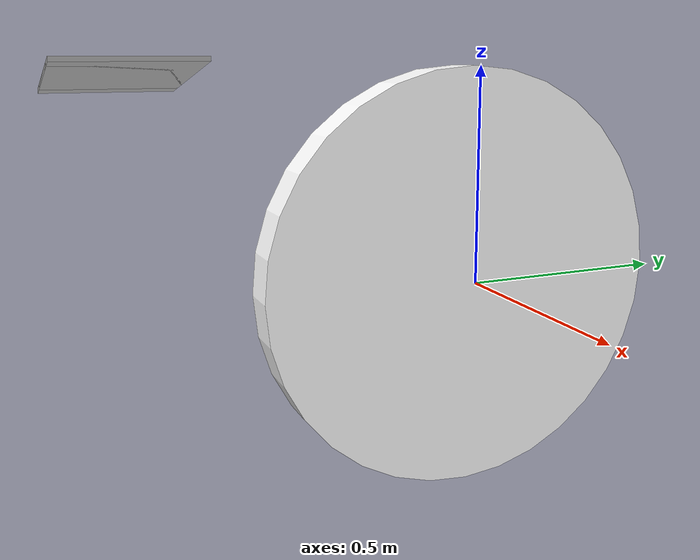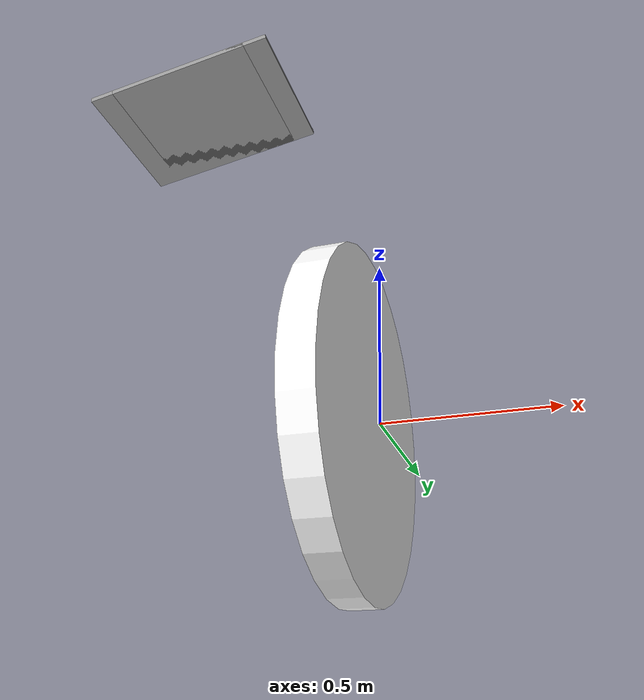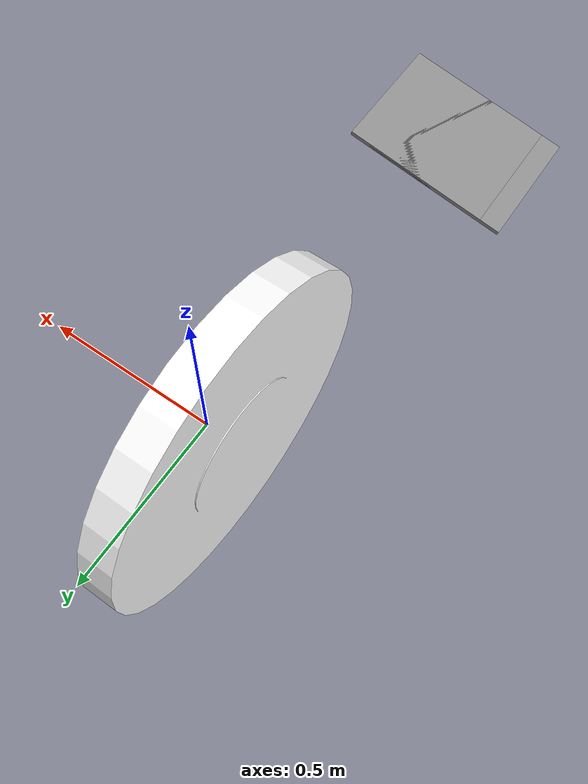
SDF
<?xml version='1.0'?>
<sdf version='1.6'>
  <model name='platform_0'>
    <link name='platform'>
      <pose frame=''>-0.01265 -0.008314 0 0 0 -1.5707</pose>
      <inertial>
        <pose frame=''>0.75 0.30851 0.19941 0 -0 0</pose>
        <mass>437.49</mass>
        <inertia>
          <ixx>36.584</ixx>
          <ixy>0</ixy>
          <ixz>0</ixz>
          <iyy>88.65</iyy>
          <iyz>0</iyz>
          <izz>107.21</izz>
        </inertia>
      </inertial>
      <self_collide>0</self_collide>
      <kinematic>0</kinematic>
      <visual name='platform_visual'>
        <pose frame=''>0 0 0 1.5708 -0 0</pose>
        <geometry>
          <mesh>
            <scale>1 1 1</scale>
            <uri>/home/shourish/catkin_ws/src/platform/meshes/platform.STL</uri>
          </mesh>
        </geometry>
        <cast_shadows>1</cast_shadows>
        <transparency>0</transparency>
        <material>
          <shader type='vertex'>
            <normal_map>__default__</normal_map>
          </shader>
          <ambient>0 1 0 0</ambient>
          <diffuse>1 1 1 1</diffuse>
          <specular>0 0 0 1</specular>
          <emissive>0 0 0 1</emissive>
          <script>
            <name>ModelPreview_4::platform::platform_visual_MATERIAL_</name>
            <uri>__default__</uri>
          </script>
        </material>
      </visual>
      <collision name='platform_collision'>
        <laser_retro>0</laser_retro>
        <max_contacts>10</max_contacts>
        <pose frame=''>0 0 0 1.5708 -0 0</pose>
        <geometry>
          <mesh>
            <uri>/home/shourish/catkin_ws/src/platform/meshes/platform.STL</uri>
          </mesh>
        </geometry>
        <surface>
          <friction>
            <ode>
              <mu>2</mu>
              <mu2>2</mu2>
              <fdir1>0 0 0</fdir1>
              <slip1>0</slip1>
              <slip2>0</slip2>
            </ode>
            <torsional>
              <coefficient>1</coefficient>
              <patch_radius>0</patch_radius>
              <surface_radius>0</surface_radius>
              <use_patch_radius>1</use_patch_radius>
              <ode>
                <slip>0</slip>
              </ode>
            </torsional>
          </friction>
          <bounce>
            <restitution_coefficient>0</restitution_coefficient>
            <threshold>100000</threshold>
          </bounce>
          <contact>
            <collide_without_contact>0</collide_without_contact>
            <collide_without_contact_bitmask>1</collide_without_contact_bitmask>
            <collide_bitmask>1</collide_bitmask>
            <ode>
              <soft_cfm>0</soft_cfm>
              <soft_erp>0.2</soft_erp>
              <kp>1e+13</kp>
              <kd>1</kd>
              <max_vel>0.01</max_vel>
              <min_depth>0</min_depth>
            </ode>
            <bullet>
              <split_impulse>1</split_impulse>
              <split_impulse_penetration_threshold>-0.01</split_impulse_penetration_threshold>
              <soft_cfm>0</soft_cfm>
              <soft_erp>0.2</soft_erp>
              <kp>1e+13</kp>
              <kd>1</kd>
            </bullet>
          </contact>
        </surface>
      </collision>
    </link>
    <link name='link_0'>
      <pose frame=''>-0.195147 -0.754072 0.479737 -8e-06 -0.180839 -0.000184</pose>
      <inertial>
        <mass>1</mass>
        <inertia>
          <ixx>0.166667</ixx>
          <ixy>0</ixy>
          <ixz>0</ixz>
          <iyy>0.166667</iyy>
          <iyz>0</iyz>
          <izz>0.166667</izz>
        </inertia>
        <pose frame=''>0 0 0 0 -0 0</pose>
      </inertial>
      <self_collide>0</self_collide>
      <kinematic>0</kinematic>
      <gravity>1</gravity>
      <visual name='ModelPreview_1::link_0::visual_4'>
        <pose frame=''>0 0 0 0 -0 0</pose>
        <geometry>
          <box>
            <size>0.3 0.3 0.01</size>
          </box>
        </geometry>
        <material>
          <lighting>1</lighting>
          <script>
            <uri>file://media/materials/scripts/gazebo.material</uri>
            <name>Gazebo/Grey</name>
          </script>
          <ambient>0.3 0.3 0.3 1</ambient>
          <diffuse>0.7 0.7 0.7 1</diffuse>
          <specular>0.01 0.01 0.01 1</specular>
          <emissive>0 0 0 1</emissive>
          <shader type='vertex'>
            <normal_map>__default__</normal_map>
          </shader>
        </material>
        <cast_shadows>1</cast_shadows>
        <transparency>0</transparency>
      </visual>
      <visual name='visual'>
        <pose frame=''>0 0 0 0 -0 0</pose>
        <geometry>
          <box>
            <size>0.4 0.3 0.01</size>
          </box>
        </geometry>
        <material>
          <lighting>1</lighting>
          <script>
            <uri>file://media/materials/scripts/gazebo.material</uri>
            <name>Gazebo/Grey</name>
          </script>
          <ambient>0.3 0.3 0.3 1</ambient>
          <diffuse>0.7 0.7 0.7 1</diffuse>
          <specular>0.01 0.01 0.01 1</specular>
          <emissive>0 0 0 1</emissive>
          <shader type='vertex'>
            <normal_map>__default__</normal_map>
          </shader>
        </material>
        <cast_shadows>1</cast_shadows>
        <transparency>0</transparency>
      </visual>
      <collision name='collision'>
        <laser_retro>0</laser_retro>
        <max_contacts>10</max_contacts>
        <pose frame=''>0 0 0 0 -0 0</pose>
        <geometry>
          <box>
            <size>0.4 0.3 0.01</size>
          </box>
        </geometry>
        <surface>
          <friction>
            <ode>
              <mu>0</mu>
              <mu2>0</mu2>
              <fdir1>0 0 0</fdir1>
              <slip1>0</slip1>
              <slip2>0</slip2>
            </ode>
            <torsional>
              <coefficient>1</coefficient>
              <patch_radius>0</patch_radius>
              <surface_radius>0</surface_radius>
              <use_patch_radius>1</use_patch_radius>
              <ode>
                <slip>0</slip>
              </ode>
            </torsional>
          </friction>
          <bounce>
            <restitution_coefficient>0</restitution_coefficient>
            <threshold>1e+06</threshold>
          </bounce>
          <contact>
            <collide_without_contact>0</collide_without_contact>
            <collide_without_contact_bitmask>1</collide_without_contact_bitmask>
            <collide_bitmask>1</collide_bitmask>
            <ode>
              <soft_cfm>0</soft_cfm>
              <soft_erp>0.2</soft_erp>
              <kp>1e+13</kp>
              <kd>1</kd>
              <max_vel>0.01</max_vel>
              <min_depth>0</min_depth>
            </ode>
            <bullet>
              <split_impulse>1</split_impulse>
              <split_impulse_penetration_threshold>-0.01</split_impulse_penetration_threshold>
              <soft_cfm>0</soft_cfm>
              <soft_erp>0.2</soft_erp>
              <kp>1e+13</kp>
              <kd>1</kd>
            </bullet>
          </contact>
        </surface>
      </collision>
    </link>
    <joint name='platform_JOINT_0' type='fixed'>
      <parent>platform</parent>
      <child>link_0</child>
      <pose frame=''>0 0 0 0 -0 0</pose>
      <physics>
        <ode>
          <limit>
            <cfm>0</cfm>
            <erp>0.2</erp>
          </limit>
          <suspension>
            <cfm>0</cfm>
            <erp>0.2</erp>
          </suspension>
        </ode>
      </physics>
    </joint>
    <static>0</static>
    <allow_auto_disable>1</allow_auto_disable>
  </model>
</sdf>
